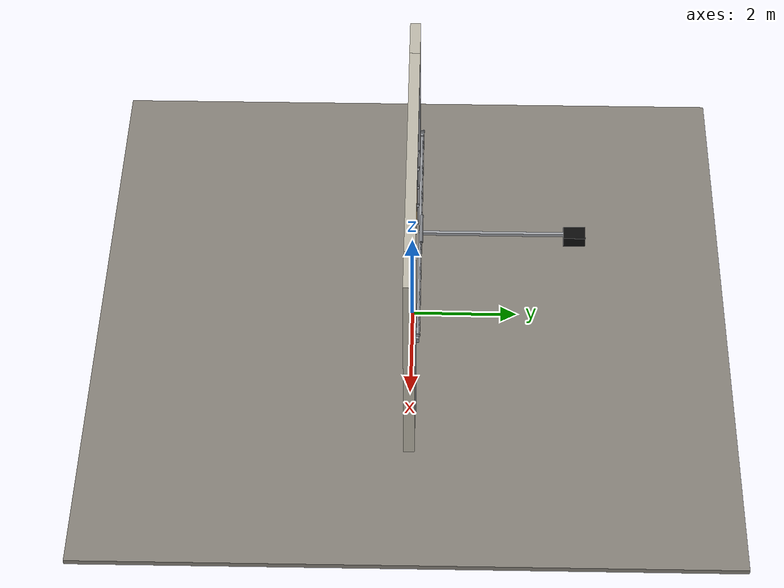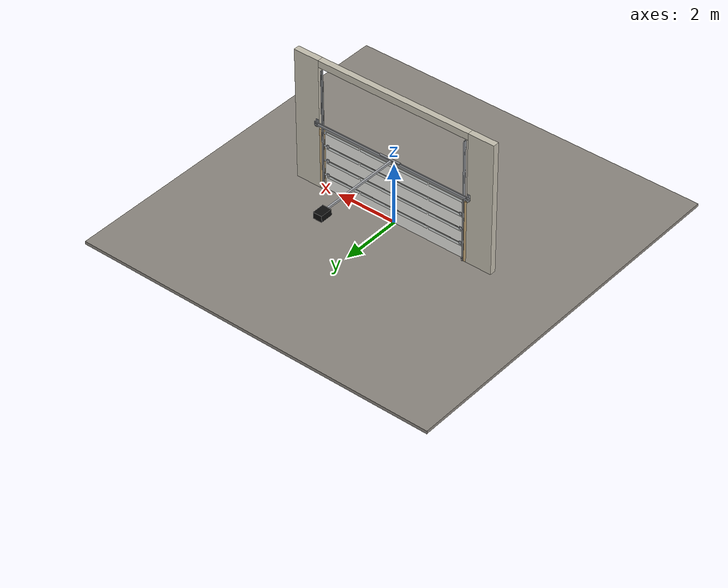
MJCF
<?xml version="1.0" ?>
<mujoco model="db0829_garage_sectional_full">
  <compiler angle="radian" meshdir="../../hardware" texturedir="../../textures" autolimits="true" inertiafromgeom="false"/>
  <option timestep="0.002" integrator="implicitfast" cone="elliptic" impratio="10" noslip_iterations="3">
    <flag multiccd="enable"/>
  </option>
  <size memory="16M"/>
  <default>
    <geom condim="4" solref="0.005 1" solimp="0.95 0.99 0.001"/>
    <joint solreflimit="0.005 1" solimplimit="0.95 0.99 0.001"/>
    <tendon solreflimit="0.005 1"/>
    <equality solref="0.002 1"/>
  </default>
  <visual>
    <headlight ambient="0.4 0.4 0.4" diffuse="0.7 0.7 0.7" specular="0.2 0.2 0.2"/>
    <quality shadowsize="4096"/>
    <map znear="0.01" zfar="60"/>
  </visual>
  <asset>
    <material name="mat_floor" rgba="0.55 0.53 0.5 1" specular="0.2" shininess="0.15" reflectance="0"/>
    <material name="mat_wall" rgba="0.78 0.76 0.7 1" specular="0.2" shininess="0.1" reflectance="0"/>
    <material name="mat_frame" rgba="0.82 0.7 0.5 1" specular="0.2" shininess="0.45" reflectance="0"/>
    <material name="mat_track" rgba="0.65 0.66 0.68 1" specular="0.74" shininess="0.5" reflectance="0.36"/>
    <material name="mat_section_0" rgba="0.93 0.93 0.91 1" specular="0.23" shininess="0.6" reflectance="0.02"/>
    <material name="mat_glass" rgba="0.85 0.92 0.95 0.25" specular="0.2" shininess="0.95" reflectance="0.1"/>
    <material name="mat_section_1" rgba="0.93 0.93 0.91 1" specular="0.23" shininess="0.6" reflectance="0.02"/>
    <material name="mat_hinge_line" rgba="0.2 0.2 0.2 1" specular="0.2" shininess="0.3" reflectance="0"/>
    <material name="mat_section_2" rgba="0.93 0.93 0.91 1" specular="0.23" shininess="0.6" reflectance="0.02"/>
    <material name="mat_section_3" rgba="0.93 0.93 0.91 1" specular="0.23" shininess="0.6" reflectance="0.02"/>
    <material name="mat_spring" rgba="0.55 0.56 0.58 1" specular="0.8" shininess="0.55" reflectance="0.4"/>
    <material name="mat_opener" rgba="0.05 0.05 0.05 1" specular="0.38" shininess="0.3" reflectance="0.12"/>
    <texture name="skybox" type="skybox" builtin="gradient" rgb1="0.6 0.7 0.85" rgb2="0.9 0.92 0.95" width="256" height="256"/>
  </asset>
  <worldbody>
    <light name="sun" pos="1.5 -2.5 4" dir="-0.3 0.5 -0.8" directional="true" diffuse="0.8 0.8 0.8" specular="0.3 0.3 0.3" castshadow="true"/>
    <light name="fill" pos="-1.5 2.5 3" dir="0.3 -0.5 -0.7" directional="true" diffuse="0.35 0.35 0.4" castshadow="false"/>
    <camera name="robot_view" pos="0 -5.246875 2.494125" xyaxes="1 0 0 0 0.26963 0.962964" fovy="52"/>
    <camera name="far_view" pos="0 5.246875 2.494125" xyaxes="-1 0 0 0 -0.26963 0.962964" fovy="52"/>
    <camera name="iso" pos="3.987625 -4.407375 3.333625" xyaxes="0.741536 0.670913 0 -0.242917 0.268487 0.932151" fovy="46"/>
    <camera name="detail_handle" pos="0.55 -1.1 1.25" xyaxes="0.975133 0.221621 0 -0.065674 0.288965 0.955084" fovy="38"/>
    <geom name="floor" type="box" size="6 6 0.05" pos="0 0 -0.05" material="mat_floor" group="0" contype="1" conaffinity="1" friction="0.8 0.005 0.0001" density="2400"/>
    <geom name="wall_left" type="box" size="0.4275 0.1 2.175" pos="-3.0125 0 2.175" material="mat_wall" group="0" contype="1" conaffinity="1" friction="0.6 0.005 0.0001" density="800"/>
    <geom name="wall_right" type="box" size="0.4275 0.1 2.175" pos="3.0125 0 2.175" material="mat_wall" group="0" contype="1" conaffinity="1" friction="0.6 0.005 0.0001" density="800"/>
    <geom name="wall_header" type="box" size="2.585 0.1 0.11" pos="0 0 4.24" material="mat_wall" group="0" contype="1" conaffinity="1" friction="0.6 0.005 0.0001" density="800"/>
    <geom name="garage_jamb_l" type="box" size="0.04 0.1 1.025" pos="-2.545 0 1.025" material="mat_frame" group="0" contype="1" conaffinity="1" friction="0.6 0.005 0.0001" density="400"/>
    <geom name="garage_jamb_r" type="box" size="0.04 0.1 1.025" pos="2.545 0 1.025" material="mat_frame" group="0" contype="1" conaffinity="1" friction="0.6 0.005 0.0001" density="400"/>
    <geom name="track_l" type="box" size="0.004 0.033 2.025" pos="-2.49 0.085 2.025" material="mat_track" group="0" contype="1" conaffinity="1" friction="0.6 0.005 0.0001" density="7850"/>
    <geom name="track_l_flange_n" type="box" size="0.022 0.004 2.025" pos="-2.472 0.056 2.025" material="mat_track" group="0" contype="1" conaffinity="1" friction="0.6 0.005 0.0001" density="7850"/>
    <geom name="track_l_flange_p" type="box" size="0.022 0.004 2.025" pos="-2.472 0.114 2.025" material="mat_track" group="0" contype="1" conaffinity="1" friction="0.6 0.005 0.0001" density="7850"/>
    <geom name="track_r" type="box" size="0.004 0.033 2.025" pos="2.49 0.085 2.025" material="mat_track" group="0" contype="1" conaffinity="1" friction="0.6 0.005 0.0001" density="7850"/>
    <geom name="track_r_flange_n" type="box" size="0.022 0.004 2.025" pos="2.472 0.056 2.025" material="mat_track" group="0" contype="1" conaffinity="1" friction="0.6 0.005 0.0001" density="7850"/>
    <geom name="track_r_flange_p" type="box" size="0.022 0.004 2.025" pos="2.472 0.114 2.025" material="mat_track" group="0" contype="1" conaffinity="1" friction="0.6 0.005 0.0001" density="7850"/>
    <geom name="torsion_shaft" type="cylinder" size="0.013 2.695" pos="0 0.17 2.3" quat="0.707107 0 0.707107 0" material="mat_track" group="0" contype="1" conaffinity="1" friction="0.6 0.005 0.0001" density="7850"/>
    <geom name="torsion_spring" type="cylinder" size="0.03 0.35" pos="0 0.17 2.3" quat="0.707107 0 0.707107 0" material="mat_spring" group="1" contype="0" conaffinity="0" density="7850"/>
    <geom name="torsion_bearing_plate_l" type="box" size="0.055 0.004 0.055" pos="-2.645 0.104 2.3" material="mat_track" group="1" contype="0" conaffinity="0" density="7850"/>
    <geom name="torsion_bearing_arm_l" type="box" size="0.008 0.049 0.03" pos="-2.645 0.139 2.3" material="mat_track" group="1" contype="0" conaffinity="0" density="7850"/>
    <geom name="torsion_bearing_plate_r" type="box" size="0.055 0.004 0.055" pos="2.645 0.104 2.3" material="mat_track" group="1" contype="0" conaffinity="0" density="7850"/>
    <geom name="torsion_bearing_arm_r" type="box" size="0.008 0.049 0.03" pos="2.645 0.139 2.3" material="mat_track" group="1" contype="0" conaffinity="0" density="7850"/>
    <geom name="opener_header_angle" type="box" size="2.7 0.025 0.025" pos="0 0.145 2.2" material="mat_track" group="1" contype="0" conaffinity="0" density="7850"/>
    <geom name="opener_header_gusset_l" type="box" size="0.05 0.035 0.05" pos="-2.645 0.135 2.2" material="mat_track" group="1" contype="0" conaffinity="0" density="7850"/>
    <geom name="opener_header_gusset_r" type="box" size="0.05 0.035 0.05" pos="2.645 0.135 2.2" material="mat_track" group="1" contype="0" conaffinity="0" density="7850"/>
    <geom name="opener_rail" type="box" size="0.03 1.44 0.03" pos="0 1.56 2.2" material="mat_track" group="0" contype="1" conaffinity="1" friction="0.6 0.005 0.0001" density="7850"/>
    <geom name="opener_unit" type="box" size="0.15 0.2 0.1" pos="0 3 2.15" material="mat_opener" group="0" contype="1" conaffinity="1" friction="0.6 0.005 0.0001" density="500"/>
    <site name="approach_point" pos="0 -2 0" quat="1 0 0 0" size="0.05" rgba="0.2 0.9 0.2 0.5" group="4"/>
    <site name="goal_point" pos="0 2 0" quat="1 0 0 0" size="0.05" rgba="0.2 0.9 0.2 0.5" group="4"/>
    <site name="door_plane_center" pos="0 0 1.025" quat="1 0 0 0" size="0.02" rgba="0.2 0.9 0.2 0.5" group="4"/>
    <body name="door" pos="0 0 0">
      <inertial pos="0 0.006301 1.009802" mass="126.583264" quat="0.707128 -0.707085 0 0" diaginertia="41.395205857 293.244981164 334.511115784"/>
      <joint name="door_slide" type="slide" axis="0 0 1" limited="true" range="0 0.003" damping="8.329163" frictionloss="80.688255" stiffness="181.491189" springref="6.5" armature="0.5"/>
      <geom name="section_0_slab" type="box" size="2.44 0.025 0.25" pos="0 0 0.26" material="mat_section_0" group="0" contype="1" conaffinity="1" friction="0.4 0.005 0.0001" density="1"/>
      <geom name="section_0_glass_0" type="box" size="0.5825 0.0258 0.04" pos="-1.8075 0 0.44" material="mat_glass" group="1" contype="0" conaffinity="0" density="1"/>
      <geom name="section_0_glass_1" type="box" size="0.5825 0.0258 0.04" pos="-0.6025 0 0.44" material="mat_glass" group="1" contype="0" conaffinity="0" density="1"/>
      <geom name="section_0_glass_2" type="box" size="0.5825 0.0258 0.04" pos="0.6025 0 0.44" material="mat_glass" group="1" contype="0" conaffinity="0" density="1"/>
      <geom name="section_0_glass_3" type="box" size="0.5825 0.0258 0.04" pos="1.8075 0 0.44" material="mat_glass" group="1" contype="0" conaffinity="0" density="1"/>
      <geom name="section_1_slab" type="box" size="2.44 0.025 0.25" pos="0 0 0.76" material="mat_section_1" group="0" contype="1" conaffinity="1" friction="0.4 0.005 0.0001" density="1"/>
      <geom name="section_1_glass_0" type="box" size="0.5825 0.0258 0.04" pos="-1.8075 0 0.94" material="mat_glass" group="1" contype="0" conaffinity="0" density="1"/>
      <geom name="section_1_glass_1" type="box" size="0.5825 0.0258 0.04" pos="-0.6025 0 0.94" material="mat_glass" group="1" contype="0" conaffinity="0" density="1"/>
      <geom name="section_1_glass_2" type="box" size="0.5825 0.0258 0.04" pos="0.6025 0 0.94" material="mat_glass" group="1" contype="0" conaffinity="0" density="1"/>
      <geom name="section_1_glass_3" type="box" size="0.5825 0.0258 0.04" pos="1.8075 0 0.94" material="mat_glass" group="1" contype="0" conaffinity="0" density="1"/>
      <geom name="section_hinge_line_1" type="box" size="2.42 0.001 0.004" pos="0 0.026 0.51" material="mat_hinge_line" group="1" contype="0" conaffinity="0" density="1"/>
      <geom name="section_hinge_1_254" type="box" size="0.04 0.01 0.05" pos="-2.34 0.035 0.51" material="mat_track" group="1" contype="0" conaffinity="0" density="7850"/>
      <geom name="section_hinge_1_488" type="box" size="0.04 0.01 0.05" pos="0 0.035 0.51" material="mat_track" group="1" contype="0" conaffinity="0" density="7850"/>
      <geom name="section_hinge_1_722" type="box" size="0.04 0.01 0.05" pos="2.34 0.035 0.51" material="mat_track" group="1" contype="0" conaffinity="0" density="7850"/>
      <geom name="section_2_slab" type="box" size="2.44 0.025 0.25" pos="0 0 1.26" material="mat_section_2" group="0" contype="1" conaffinity="1" friction="0.4 0.005 0.0001" density="1"/>
      <geom name="section_2_glass_0" type="box" size="0.5825 0.0258 0.04" pos="-1.8075 0 1.44" material="mat_glass" group="1" contype="0" conaffinity="0" density="1"/>
      <geom name="section_2_glass_1" type="box" size="0.5825 0.0258 0.04" pos="-0.6025 0 1.44" material="mat_glass" group="1" contype="0" conaffinity="0" density="1"/>
      <geom name="section_2_glass_2" type="box" size="0.5825 0.0258 0.04" pos="0.6025 0 1.44" material="mat_glass" group="1" contype="0" conaffinity="0" density="1"/>
      <geom name="section_2_glass_3" type="box" size="0.5825 0.0258 0.04" pos="1.8075 0 1.44" material="mat_glass" group="1" contype="0" conaffinity="0" density="1"/>
      <geom name="section_hinge_line_2" type="box" size="2.42 0.001 0.004" pos="0 0.026 1.01" material="mat_hinge_line" group="1" contype="0" conaffinity="0" density="1"/>
      <geom name="section_hinge_2_254" type="box" size="0.04 0.01 0.05" pos="-2.34 0.035 1.01" material="mat_track" group="1" contype="0" conaffinity="0" density="7850"/>
      <geom name="section_hinge_2_488" type="box" size="0.04 0.01 0.05" pos="0 0.035 1.01" material="mat_track" group="1" contype="0" conaffinity="0" density="7850"/>
      <geom name="section_hinge_2_722" type="box" size="0.04 0.01 0.05" pos="2.34 0.035 1.01" material="mat_track" group="1" contype="0" conaffinity="0" density="7850"/>
      <geom name="section_3_slab" type="box" size="2.44 0.025 0.25" pos="0 0 1.76" material="mat_section_3" group="0" contype="1" conaffinity="1" friction="0.4 0.005 0.0001" density="1"/>
      <geom name="section_3_glass_0" type="box" size="0.5825 0.0258 0.04" pos="-1.8075 0 1.94" material="mat_glass" group="1" contype="0" conaffinity="0" density="1"/>
      <geom name="section_3_glass_1" type="box" size="0.5825 0.0258 0.04" pos="-0.6025 0 1.94" material="mat_glass" group="1" contype="0" conaffinity="0" density="1"/>
      <geom name="section_3_glass_2" type="box" size="0.5825 0.0258 0.04" pos="0.6025 0 1.94" material="mat_glass" group="1" contype="0" conaffinity="0" density="1"/>
      <geom name="section_3_glass_3" type="box" size="0.5825 0.0258 0.04" pos="1.8075 0 1.94" material="mat_glass" group="1" contype="0" conaffinity="0" density="1"/>
      <geom name="section_hinge_line_3" type="box" size="2.42 0.001 0.004" pos="0 0.026 1.51" material="mat_hinge_line" group="1" contype="0" conaffinity="0" density="1"/>
      <geom name="section_hinge_3_254" type="box" size="0.04 0.01 0.05" pos="-2.34 0.035 1.51" material="mat_track" group="1" contype="0" conaffinity="0" density="7850"/>
      <geom name="section_hinge_3_488" type="box" size="0.04 0.01 0.05" pos="0 0.035 1.51" material="mat_track" group="1" contype="0" conaffinity="0" density="7850"/>
      <geom name="section_hinge_3_722" type="box" size="0.04 0.01 0.05" pos="2.34 0.035 1.51" material="mat_track" group="1" contype="0" conaffinity="0" density="7850"/>
      <geom name="roller_l_0" type="cylinder" size="0.025 0.01" pos="-2.47 0.085 0.04" quat="0.707107 0 0.707107 0" material="mat_track" group="1" contype="0" conaffinity="0" density="7850"/>
      <geom name="roller_stem_l_0" type="cylinder" size="0.006 0.027" pos="-2.445 0.085 0.04" quat="0.707107 0 0.707107 0" material="mat_track" group="1" contype="0" conaffinity="0" density="7850"/>
      <geom name="roller_arm_l_0" type="box" size="0.03 0.03 0.006" pos="-2.42 0.055 0.04" material="mat_track" group="1" contype="0" conaffinity="0" density="7850"/>
      <geom name="roller_l_1" type="cylinder" size="0.025 0.01" pos="-2.47 0.085 0.51" quat="0.707107 0 0.707107 0" material="mat_track" group="1" contype="0" conaffinity="0" density="7850"/>
      <geom name="roller_stem_l_1" type="cylinder" size="0.006 0.027" pos="-2.445 0.085 0.51" quat="0.707107 0 0.707107 0" material="mat_track" group="1" contype="0" conaffinity="0" density="7850"/>
      <geom name="roller_arm_l_1" type="box" size="0.03 0.03 0.006" pos="-2.42 0.055 0.51" material="mat_track" group="1" contype="0" conaffinity="0" density="7850"/>
      <geom name="roller_l_2" type="cylinder" size="0.025 0.01" pos="-2.47 0.085 1.01" quat="0.707107 0 0.707107 0" material="mat_track" group="1" contype="0" conaffinity="0" density="7850"/>
      <geom name="roller_stem_l_2" type="cylinder" size="0.006 0.027" pos="-2.445 0.085 1.01" quat="0.707107 0 0.707107 0" material="mat_track" group="1" contype="0" conaffinity="0" density="7850"/>
      <geom name="roller_arm_l_2" type="box" size="0.03 0.03 0.006" pos="-2.42 0.055 1.01" material="mat_track" group="1" contype="0" conaffinity="0" density="7850"/>
      <geom name="roller_l_3" type="cylinder" size="0.025 0.01" pos="-2.47 0.085 1.51" quat="0.707107 0 0.707107 0" material="mat_track" group="1" contype="0" conaffinity="0" density="7850"/>
      <geom name="roller_stem_l_3" type="cylinder" size="0.006 0.027" pos="-2.445 0.085 1.51" quat="0.707107 0 0.707107 0" material="mat_track" group="1" contype="0" conaffinity="0" density="7850"/>
      <geom name="roller_arm_l_3" type="box" size="0.03 0.03 0.006" pos="-2.42 0.055 1.51" material="mat_track" group="1" contype="0" conaffinity="0" density="7850"/>
      <geom name="roller_l_4" type="cylinder" size="0.025 0.01" pos="-2.47 0.085 1.95" quat="0.707107 0 0.707107 0" material="mat_track" group="1" contype="0" conaffinity="0" density="7850"/>
      <geom name="roller_stem_l_4" type="cylinder" size="0.006 0.027" pos="-2.445 0.085 1.95" quat="0.707107 0 0.707107 0" material="mat_track" group="1" contype="0" conaffinity="0" density="7850"/>
      <geom name="roller_arm_l_4" type="box" size="0.03 0.03 0.006" pos="-2.42 0.055 1.95" material="mat_track" group="1" contype="0" conaffinity="0" density="7850"/>
      <geom name="roller_r_0" type="cylinder" size="0.025 0.01" pos="2.47 0.085 0.04" quat="0.707107 0 0.707107 0" material="mat_track" group="1" contype="0" conaffinity="0" density="7850"/>
      <geom name="roller_stem_r_0" type="cylinder" size="0.006 0.027" pos="2.445 0.085 0.04" quat="0.707107 0 0.707107 0" material="mat_track" group="1" contype="0" conaffinity="0" density="7850"/>
      <geom name="roller_arm_r_0" type="box" size="0.03 0.03 0.006" pos="2.42 0.055 0.04" material="mat_track" group="1" contype="0" conaffinity="0" density="7850"/>
      <geom name="roller_r_1" type="cylinder" size="0.025 0.01" pos="2.47 0.085 0.51" quat="0.707107 0 0.707107 0" material="mat_track" group="1" contype="0" conaffinity="0" density="7850"/>
      <geom name="roller_stem_r_1" type="cylinder" size="0.006 0.027" pos="2.445 0.085 0.51" quat="0.707107 0 0.707107 0" material="mat_track" group="1" contype="0" conaffinity="0" density="7850"/>
      <geom name="roller_arm_r_1" type="box" size="0.03 0.03 0.006" pos="2.42 0.055 0.51" material="mat_track" group="1" contype="0" conaffinity="0" density="7850"/>
      <geom name="roller_r_2" type="cylinder" size="0.025 0.01" pos="2.47 0.085 1.01" quat="0.707107 0 0.707107 0" material="mat_track" group="1" contype="0" conaffinity="0" density="7850"/>
      <geom name="roller_stem_r_2" type="cylinder" size="0.006 0.027" pos="2.445 0.085 1.01" quat="0.707107 0 0.707107 0" material="mat_track" group="1" contype="0" conaffinity="0" density="7850"/>
      <geom name="roller_arm_r_2" type="box" size="0.03 0.03 0.006" pos="2.42 0.055 1.01" material="mat_track" group="1" contype="0" conaffinity="0" density="7850"/>
      <geom name="roller_r_3" type="cylinder" size="0.025 0.01" pos="2.47 0.085 1.51" quat="0.707107 0 0.707107 0" material="mat_track" group="1" contype="0" conaffinity="0" density="7850"/>
      <geom name="roller_stem_r_3" type="cylinder" size="0.006 0.027" pos="2.445 0.085 1.51" quat="0.707107 0 0.707107 0" material="mat_track" group="1" contype="0" conaffinity="0" density="7850"/>
      <geom name="roller_arm_r_3" type="box" size="0.03 0.03 0.006" pos="2.42 0.055 1.51" material="mat_track" group="1" contype="0" conaffinity="0" density="7850"/>
      <geom name="roller_r_4" type="cylinder" size="0.025 0.01" pos="2.47 0.085 1.95" quat="0.707107 0 0.707107 0" material="mat_track" group="1" contype="0" conaffinity="0" density="7850"/>
      <geom name="roller_stem_r_4" type="cylinder" size="0.006 0.027" pos="2.445 0.085 1.95" quat="0.707107 0 0.707107 0" material="mat_track" group="1" contype="0" conaffinity="0" density="7850"/>
      <geom name="roller_arm_r_4" type="box" size="0.03 0.03 0.006" pos="2.42 0.055 1.95" material="mat_track" group="1" contype="0" conaffinity="0" density="7850"/>
    </body>
  </worldbody>
  <sensor>
    <jointpos name="door_slide_pos" joint="door_slide"/>
    <jointvel name="door_slide_vel" joint="door_slide"/>
  </sensor>
</mujoco>
